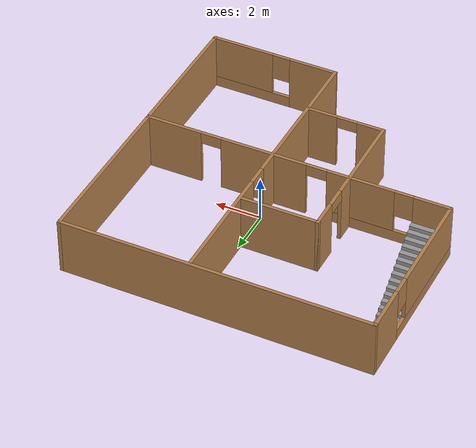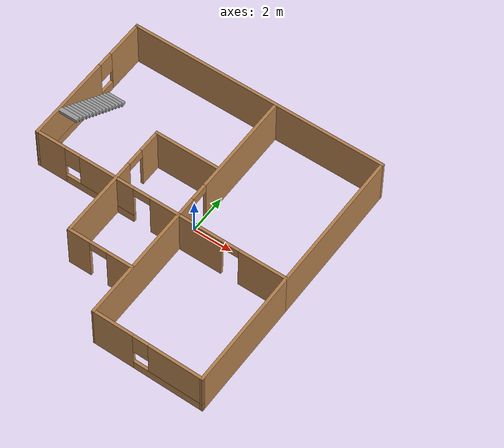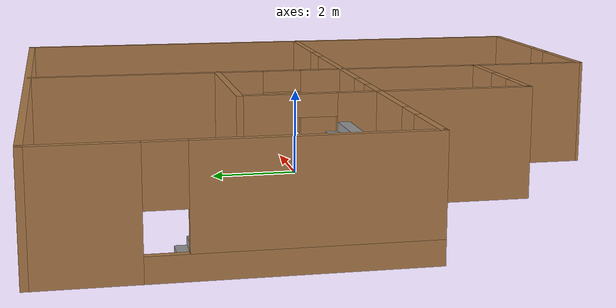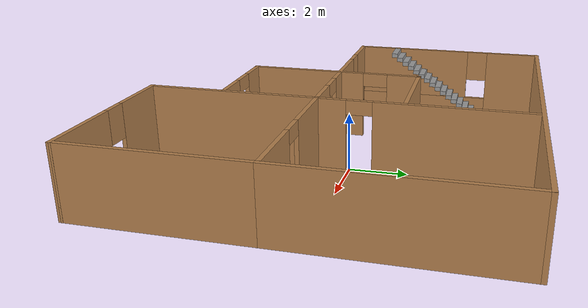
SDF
<?xml version='1.0'?>
<sdf version='1.6'>
  <model name='model'>
    <pose frame=''>-1.02283 -0.516405 0 0 -0 0</pose>
    <link name='Stairs_0'>
      <visual name='Stairs_0_Visual_0'>
        <pose frame=''>-6.12089 4.20244 0.083333 0 -0 0</pose>
        <geometry>
          <box>
            <size>1 0.233333 0.166667</size>
          </box>
        </geometry>
        <material>
          <script>
            <uri>file://media/materials/scripts/gazebo.material</uri>
            <name>Gazebo/Grey</name>
          </script>
          <ambient>1 1 1 1</ambient>
        </material>
        <meta>
          <layer>0</layer>
        </meta>
      </visual>
      <collision name='Stairs_0_Collision_0'>
        <geometry>
          <box>
            <size>1 0.233333 0.166667</size>
          </box>
        </geometry>
        <pose frame=''>-6.12089 4.20244 0.083333 0 -0 0</pose>
      </collision>
      <visual name='Stairs_0_Visual_1'>
        <pose frame=''>-6.12089 3.9691 0.25 0 -0 0</pose>
        <geometry>
          <box>
            <size>1 0.233333 0.166667</size>
          </box>
        </geometry>
        <material>
          <script>
            <uri>file://media/materials/scripts/gazebo.material</uri>
            <name>Gazebo/Grey</name>
          </script>
          <ambient>1 1 1 1</ambient>
        </material>
        <meta>
          <layer>0</layer>
        </meta>
      </visual>
      <collision name='Stairs_0_Collision_1'>
        <geometry>
          <box>
            <size>1 0.233333 0.166667</size>
          </box>
        </geometry>
        <pose frame=''>-6.12089 3.9691 0.25 0 -0 0</pose>
      </collision>
      <visual name='Stairs_0_Visual_2'>
        <pose frame=''>-6.12089 3.73577 0.416667 0 -0 0</pose>
        <geometry>
          <box>
            <size>1 0.233333 0.166667</size>
          </box>
        </geometry>
        <material>
          <script>
            <uri>file://media/materials/scripts/gazebo.material</uri>
            <name>Gazebo/Grey</name>
          </script>
          <ambient>1 1 1 1</ambient>
        </material>
        <meta>
          <layer>0</layer>
        </meta>
      </visual>
      <collision name='Stairs_0_Collision_2'>
        <geometry>
          <box>
            <size>1 0.233333 0.166667</size>
          </box>
        </geometry>
        <pose frame=''>-6.12089 3.73577 0.416667 0 -0 0</pose>
      </collision>
      <visual name='Stairs_0_Visual_3'>
        <pose frame=''>-6.12089 3.50244 0.583333 0 -0 0</pose>
        <geometry>
          <box>
            <size>1 0.233333 0.166667</size>
          </box>
        </geometry>
        <material>
          <script>
            <uri>file://media/materials/scripts/gazebo.material</uri>
            <name>Gazebo/Grey</name>
          </script>
          <ambient>1 1 1 1</ambient>
        </material>
        <meta>
          <layer>0</layer>
        </meta>
      </visual>
      <collision name='Stairs_0_Collision_3'>
        <geometry>
          <box>
            <size>1 0.233333 0.166667</size>
          </box>
        </geometry>
        <pose frame=''>-6.12089 3.50244 0.583333 0 -0 0</pose>
      </collision>
      <visual name='Stairs_0_Visual_4'>
        <pose frame=''>-6.12089 3.26911 0.75 0 -0 0</pose>
        <geometry>
          <box>
            <size>1 0.233333 0.166667</size>
          </box>
        </geometry>
        <material>
          <script>
            <uri>file://media/materials/scripts/gazebo.material</uri>
            <name>Gazebo/Grey</name>
          </script>
          <ambient>1 1 1 1</ambient>
        </material>
        <meta>
          <layer>0</layer>
        </meta>
      </visual>
      <collision name='Stairs_0_Collision_4'>
        <geometry>
          <box>
            <size>1 0.233333 0.166667</size>
          </box>
        </geometry>
        <pose frame=''>-6.12089 3.26911 0.75 0 -0 0</pose>
      </collision>
      <visual name='Stairs_0_Visual_5'>
        <pose frame=''>-6.12089 3.03577 0.916667 0 -0 0</pose>
        <geometry>
          <box>
            <size>1 0.233333 0.166667</size>
          </box>
        </geometry>
        <material>
          <script>
            <uri>file://media/materials/scripts/gazebo.material</uri>
            <name>Gazebo/Grey</name>
          </script>
          <ambient>1 1 1 1</ambient>
        </material>
        <meta>
          <layer>0</layer>
        </meta>
      </visual>
      <collision name='Stairs_0_Collision_5'>
        <geometry>
          <box>
            <size>1 0.233333 0.166667</size>
          </box>
        </geometry>
        <pose frame=''>-6.12089 3.03577 0.916667 0 -0 0</pose>
      </collision>
      <visual name='Stairs_0_Visual_6'>
        <pose frame=''>-6.12089 2.80244 1.08333 0 -0 0</pose>
        <geometry>
          <box>
            <size>1 0.233333 0.166667</size>
          </box>
        </geometry>
        <material>
          <script>
            <uri>file://media/materials/scripts/gazebo.material</uri>
            <name>Gazebo/Grey</name>
          </script>
          <ambient>1 1 1 1</ambient>
        </material>
        <meta>
          <layer>0</layer>
        </meta>
      </visual>
      <collision name='Stairs_0_Collision_6'>
        <geometry>
          <box>
            <size>1 0.233333 0.166667</size>
          </box>
        </geometry>
        <pose frame=''>-6.12089 2.80244 1.08333 0 -0 0</pose>
      </collision>
      <visual name='Stairs_0_Visual_7'>
        <pose frame=''>-6.12089 2.5691 1.25 0 -0 0</pose>
        <geometry>
          <box>
            <size>1 0.233333 0.166667</size>
          </box>
        </geometry>
        <material>
          <script>
            <uri>file://media/materials/scripts/gazebo.material</uri>
            <name>Gazebo/Grey</name>
          </script>
          <ambient>1 1 1 1</ambient>
        </material>
        <meta>
          <layer>0</layer>
        </meta>
      </visual>
      <collision name='Stairs_0_Collision_7'>
        <geometry>
          <box>
            <size>1 0.233333 0.166667</size>
          </box>
        </geometry>
        <pose frame=''>-6.12089 2.5691 1.25 0 -0 0</pose>
      </collision>
      <visual name='Stairs_0_Visual_8'>
        <pose frame=''>-6.12089 2.33577 1.41667 0 -0 0</pose>
        <geometry>
          <box>
            <size>1 0.233333 0.166667</size>
          </box>
        </geometry>
        <material>
          <script>
            <uri>file://media/materials/scripts/gazebo.material</uri>
            <name>Gazebo/Grey</name>
          </script>
          <ambient>1 1 1 1</ambient>
        </material>
        <meta>
          <layer>0</layer>
        </meta>
      </visual>
      <collision name='Stairs_0_Collision_8'>
        <geometry>
          <box>
            <size>1 0.233333 0.166667</size>
          </box>
        </geometry>
        <pose frame=''>-6.12089 2.33577 1.41667 0 -0 0</pose>
      </collision>
      <visual name='Stairs_0_Visual_9'>
        <pose frame=''>-6.12089 2.10244 1.58333 0 -0 0</pose>
        <geometry>
          <box>
            <size>1 0.233333 0.166667</size>
          </box>
        </geometry>
        <material>
          <script>
            <uri>file://media/materials/scripts/gazebo.material</uri>
            <name>Gazebo/Grey</name>
          </script>
          <ambient>1 1 1 1</ambient>
        </material>
        <meta>
          <layer>0</layer>
        </meta>
      </visual>
      <collision name='Stairs_0_Collision_9'>
        <geometry>
          <box>
            <size>1 0.233333 0.166667</size>
          </box>
        </geometry>
        <pose frame=''>-6.12089 2.10244 1.58333 0 -0 0</pose>
      </collision>
      <visual name='Stairs_0_Visual_10'>
        <pose frame=''>-6.12089 1.86911 1.75 0 -0 0</pose>
        <geometry>
          <box>
            <size>1 0.233333 0.166667</size>
          </box>
        </geometry>
        <material>
          <script>
            <uri>file://media/materials/scripts/gazebo.material</uri>
            <name>Gazebo/Grey</name>
          </script>
          <ambient>1 1 1 1</ambient>
        </material>
        <meta>
          <layer>0</layer>
        </meta>
      </visual>
      <collision name='Stairs_0_Collision_10'>
        <geometry>
          <box>
            <size>1 0.233333 0.166667</size>
          </box>
        </geometry>
        <pose frame=''>-6.12089 1.86911 1.75 0 -0 0</pose>
      </collision>
      <visual name='Stairs_0_Visual_11'>
        <pose frame=''>-6.12089 1.63577 1.91667 0 -0 0</pose>
        <geometry>
          <box>
            <size>1 0.233333 0.166667</size>
          </box>
        </geometry>
        <material>
          <script>
            <uri>file://media/materials/scripts/gazebo.material</uri>
            <name>Gazebo/Grey</name>
          </script>
          <ambient>1 1 1 1</ambient>
        </material>
        <meta>
          <layer>0</layer>
        </meta>
      </visual>
      <collision name='Stairs_0_Collision_11'>
        <geometry>
          <box>
            <size>1 0.233333 0.166667</size>
          </box>
        </geometry>
        <pose frame=''>-6.12089 1.63577 1.91667 0 -0 0</pose>
      </collision>
      <visual name='Stairs_0_Visual_12'>
        <pose frame=''>-6.12089 1.40244 2.08333 0 -0 0</pose>
        <geometry>
          <box>
            <size>1 0.233333 0.166667</size>
          </box>
        </geometry>
        <material>
          <script>
            <uri>file://media/materials/scripts/gazebo.material</uri>
            <name>Gazebo/Grey</name>
          </script>
          <ambient>1 1 1 1</ambient>
        </material>
        <meta>
          <layer>0</layer>
        </meta>
      </visual>
      <collision name='Stairs_0_Collision_12'>
        <geometry>
          <box>
            <size>1 0.233333 0.166667</size>
          </box>
        </geometry>
        <pose frame=''>-6.12089 1.40244 2.08333 0 -0 0</pose>
      </collision>
      <visual name='Stairs_0_Visual_13'>
        <pose frame=''>-6.12089 1.16911 2.25 0 -0 0</pose>
        <geometry>
          <box>
            <size>1 0.233333 0.166667</size>
          </box>
        </geometry>
        <material>
          <script>
            <uri>file://media/materials/scripts/gazebo.material</uri>
            <name>Gazebo/Grey</name>
          </script>
          <ambient>1 1 1 1</ambient>
        </material>
        <meta>
          <layer>0</layer>
        </meta>
      </visual>
      <collision name='Stairs_0_Collision_13'>
        <geometry>
          <box>
            <size>1 0.233333 0.166667</size>
          </box>
        </geometry>
        <pose frame=''>-6.12089 1.16911 2.25 0 -0 0</pose>
      </collision>
      <visual name='Stairs_0_Visual_14'>
        <pose frame=''>-6.12089 0.935772 2.41667 0 -0 0</pose>
        <geometry>
          <box>
            <size>1 0.233333 0.166667</size>
          </box>
        </geometry>
        <material>
          <script>
            <uri>file://media/materials/scripts/gazebo.material</uri>
            <name>Gazebo/Grey</name>
          </script>
          <ambient>1 1 1 1</ambient>
        </material>
        <meta>
          <layer>0</layer>
        </meta>
      </visual>
      <collision name='Stairs_0_Collision_14'>
        <geometry>
          <box>
            <size>1 0.233333 0.166667</size>
          </box>
        </geometry>
        <pose frame=''>-6.12089 0.935772 2.41667 0 -0 0</pose>
      </collision>
    </link>
    <link name='Wall_10'>
      <collision name='Wall_10_Collision'>
        <geometry>
          <box>
            <size>6.25 0.15 2.5</size>
          </box>
        </geometry>
        <pose frame=''>0 0 1.25 0 -0 0</pose>
      </collision>
      <visual name='Wall_10_Visual'>
        <pose frame=''>0 0 1.25 0 -0 0</pose>
        <geometry>
          <box>
            <size>6.25 0.15 2.5</size>
          </box>
        </geometry>
        <material>
          <script>
            <uri>file://media/materials/scripts/gazebo.material</uri>
            <name>Gazebo/Wood</name>
          </script>
          <ambient>1 1 1 1</ambient>
        </material>
        <meta>
          <layer>0</layer>
        </meta>
      </visual>
      <pose frame=''>6.67469 -3.67469 0 0 -0 1.5708</pose>
    </link>
    <link name='Wall_12'>
      <collision name='Wall_12_Collision'>
        <geometry>
          <box>
            <size>3.5 0.15 2.5</size>
          </box>
        </geometry>
        <pose frame=''>0 0 1.25 0 -0 0</pose>
      </collision>
      <visual name='Wall_12_Visual'>
        <pose frame=''>0 0 1.25 0 -0 0</pose>
        <geometry>
          <box>
            <size>3.5 0.15 2.5</size>
          </box>
        </geometry>
        <material>
          <script>
            <uri>file://media/materials/scripts/gazebo.material</uri>
            <name>Gazebo/Wood</name>
          </script>
          <ambient>1 1 1 1</ambient>
        </material>
        <meta>
          <layer>0</layer>
        </meta>
      </visual>
      <pose frame=''>-0.67352 2.3745 0 0 -0 3.14159</pose>
    </link>
    <link name='Wall_13'>
      <pose frame=''>-2.34852 -0.800497 0 0 0 -1.5708</pose>
      <visual name='Wall_13_Visual_0'>
        <pose frame=''>-2.62079 0 1.25 0 -0 0</pose>
        <geometry>
          <box>
            <size>1.25842 0.15 2.5</size>
          </box>
        </geometry>
        <material>
          <script>
            <uri>file://media/materials/scripts/gazebo.material</uri>
            <name>Gazebo/Wood</name>
          </script>
          <ambient>1 1 1 1</ambient>
        </material>
        <meta>
          <layer>0</layer>
        </meta>
      </visual>
      <collision name='Wall_13_Collision_0'>
        <geometry>
          <box>
            <size>1.25842 0.15 2.5</size>
          </box>
        </geometry>
        <pose frame=''>-2.62079 0 1.25 0 -0 0</pose>
      </collision>
      <visual name='Wall_13_Visual_1'>
        <pose frame=''>1.07921 0 1.25 0 -0 0</pose>
        <geometry>
          <box>
            <size>4.34157 0.15 2.5</size>
          </box>
        </geometry>
        <material>
          <script>
            <uri>file://media/materials/scripts/gazebo.material</uri>
            <name>Gazebo/Wood</name>
          </script>
          <ambient>1 1 1 1</ambient>
        </material>
        <meta>
          <layer>0</layer>
        </meta>
      </visual>
      <collision name='Wall_13_Collision_1'>
        <geometry>
          <box>
            <size>4.34157 0.15 2.5</size>
          </box>
        </geometry>
        <pose frame=''>1.07921 0 1.25 0 -0 0</pose>
      </collision>
      <visual name='Wall_13_Visual_2'>
        <pose frame=''>-1.54157 0 2.25 0 -0 0</pose>
        <geometry>
          <box>
            <size>0.9 0.15 0.5</size>
          </box>
        </geometry>
        <material>
          <script>
            <uri>file://media/materials/scripts/gazebo.material</uri>
            <name>Gazebo/Wood</name>
          </script>
          <ambient>1 1 1 1</ambient>
        </material>
        <meta>
          <layer>0</layer>
        </meta>
      </visual>
      <collision name='Wall_13_Collision_2'>
        <geometry>
          <box>
            <size>0.9 0.15 0.5</size>
          </box>
        </geometry>
        <pose frame=''>-1.54157 0 2.25 0 -0 0</pose>
      </collision>
    </link>
    <link name='Wall_14'>
      <pose frame=''>-0.67352 -3.9755 0 0 -0 0</pose>
      <visual name='Wall_14_Visual_0'>
        <pose frame=''>-1.14388 0 1.25 0 -0 0</pose>
        <geometry>
          <box>
            <size>1.21223 0.15 2.5</size>
          </box>
        </geometry>
        <material>
          <script>
            <uri>file://media/materials/scripts/gazebo.material</uri>
            <name>Gazebo/Wood</name>
          </script>
          <ambient>1 1 1 1</ambient>
        </material>
        <meta>
          <layer>0</layer>
        </meta>
      </visual>
      <collision name='Wall_14_Collision_0'>
        <geometry>
          <box>
            <size>1.21223 0.15 2.5</size>
          </box>
        </geometry>
        <pose frame=''>-1.14388 0 1.25 0 -0 0</pose>
      </collision>
      <visual name='Wall_14_Visual_1'>
        <pose frame=''>1.05612 0 1.25 0 -0 0</pose>
        <geometry>
          <box>
            <size>1.38777 0.15 2.5</size>
          </box>
        </geometry>
        <material>
          <script>
            <uri>file://media/materials/scripts/gazebo.material</uri>
            <name>Gazebo/Wood</name>
          </script>
          <ambient>1 1 1 1</ambient>
        </material>
        <meta>
          <layer>0</layer>
        </meta>
      </visual>
      <collision name='Wall_14_Collision_1'>
        <geometry>
          <box>
            <size>1.38777 0.15 2.5</size>
          </box>
        </geometry>
        <pose frame=''>1.05612 0 1.25 0 -0 0</pose>
      </collision>
      <visual name='Wall_14_Visual_2'>
        <pose frame=''>-0.087766 0 2.25 0 -0 0</pose>
        <geometry>
          <box>
            <size>0.9 0.15 0.5</size>
          </box>
        </geometry>
        <material>
          <script>
            <uri>file://media/materials/scripts/gazebo.material</uri>
            <name>Gazebo/Wood</name>
          </script>
          <ambient>1 1 1 1</ambient>
        </material>
        <meta>
          <layer>0</layer>
        </meta>
      </visual>
      <collision name='Wall_14_Collision_2'>
        <geometry>
          <box>
            <size>0.9 0.15 0.5</size>
          </box>
        </geometry>
        <pose frame=''>-0.087766 0 2.25 0 -0 0</pose>
      </collision>
    </link>
    <link name='Wall_3'>
      <pose frame=''>-6.67531 3.05031 0 0 0 -1.5708</pose>
      <visual name='Wall_3_Visual_0'>
        <pose frame=''>-2.7056 0 1.25 0 -0 0</pose>
        <geometry>
          <box>
            <size>2.0888 0.15 2.5</size>
          </box>
        </geometry>
        <material>
          <script>
            <uri>file://media/materials/scripts/gazebo.material</uri>
            <name>Gazebo/Wood</name>
          </script>
          <ambient>1 1 1 1</ambient>
        </material>
        <meta>
          <layer>0</layer>
        </meta>
      </visual>
      <collision name='Wall_3_Collision_0'>
        <geometry>
          <box>
            <size>2.0888 0.15 2.5</size>
          </box>
        </geometry>
        <pose frame=''>-2.7056 0 1.25 0 -0 0</pose>
      </collision>
      <visual name='Wall_3_Visual_1'>
        <pose frame=''>1.0444 0 0.25 0 -0 0</pose>
        <geometry>
          <box>
            <size>5.4112 0.15 0.5</size>
          </box>
        </geometry>
        <material>
          <script>
            <uri>file://media/materials/scripts/gazebo.material</uri>
            <name>Gazebo/Wood</name>
          </script>
          <ambient>1 1 1 1</ambient>
        </material>
        <meta>
          <layer>0</layer>
        </meta>
      </visual>
      <collision name='Wall_3_Collision_1'>
        <geometry>
          <box>
            <size>5.4112 0.15 0.5</size>
          </box>
        </geometry>
        <pose frame=''>1.0444 0 0.25 0 -0 0</pose>
      </collision>
      <visual name='Wall_3_Visual_2'>
        <pose frame=''>1.4444 0 1.5 0 -0 0</pose>
        <geometry>
          <box>
            <size>4.6112 0.15 2</size>
          </box>
        </geometry>
        <material>
          <script>
            <uri>file://media/materials/scripts/gazebo.material</uri>
            <name>Gazebo/Wood</name>
          </script>
          <ambient>1 1 1 1</ambient>
        </material>
        <meta>
          <layer>0</layer>
        </meta>
      </visual>
      <collision name='Wall_3_Collision_2'>
        <geometry>
          <box>
            <size>4.6112 0.15 2</size>
          </box>
        </geometry>
        <pose frame=''>1.4444 0 1.5 0 -0 0</pose>
      </collision>
      <visual name='Wall_3_Visual_3'>
        <pose frame=''>-1.2612 0 1.9 0 -0 0</pose>
        <geometry>
          <box>
            <size>0.8 0.15 1.2</size>
          </box>
        </geometry>
        <material>
          <script>
            <uri>file://media/materials/scripts/gazebo.material</uri>
            <name>Gazebo/Wood</name>
          </script>
          <ambient>1 1 1 1</ambient>
        </material>
        <meta>
          <layer>0</layer>
        </meta>
      </visual>
      <collision name='Wall_3_Collision_3'>
        <geometry>
          <box>
            <size>0.8 0.15 1.2</size>
          </box>
        </geometry>
        <pose frame=''>-1.2612 0 1.9 0 -0 0</pose>
      </collision>
    </link>
    <link name='Wall_4'>
      <pose frame=''>-0.000311 -0.624689 0 0 -0 0</pose>
      <visual name='Wall_4_Visual_0'>
        <pose frame=''>-5.93232 0 1.25 0 -0 0</pose>
        <geometry>
          <box>
            <size>1.63535 0.15 2.5</size>
          </box>
        </geometry>
        <material>
          <script>
            <uri>file://media/materials/scripts/gazebo.material</uri>
            <name>Gazebo/Wood</name>
          </script>
          <ambient>1 1 1 1</ambient>
        </material>
        <meta>
          <layer>0</layer>
        </meta>
      </visual>
      <collision name='Wall_4_Collision_0'>
        <geometry>
          <box>
            <size>1.63535 0.15 2.5</size>
          </box>
        </geometry>
        <pose frame=''>-5.93232 0 1.25 0 -0 0</pose>
      </collision>
      <visual name='Wall_4_Visual_1'>
        <pose frame=''>1.42467 0 1.25 0 -0 0</pose>
        <geometry>
          <box>
            <size>3.80773 0.15 2.5</size>
          </box>
        </geometry>
        <material>
          <script>
            <uri>file://media/materials/scripts/gazebo.material</uri>
            <name>Gazebo/Wood</name>
          </script>
          <ambient>1 1 1 1</ambient>
        </material>
        <meta>
          <layer>0</layer>
        </meta>
      </visual>
      <collision name='Wall_4_Collision_1'>
        <geometry>
          <box>
            <size>3.80773 0.15 2.5</size>
          </box>
        </geometry>
        <pose frame=''>1.42467 0 1.25 0 -0 0</pose>
      </collision>
      <visual name='Wall_4_Visual_2'>
        <pose frame=''>5.48927 0 1.25 0 -0 0</pose>
        <geometry>
          <box>
            <size>2.52147 0.15 2.5</size>
          </box>
        </geometry>
        <material>
          <script>
            <uri>file://media/materials/scripts/gazebo.material</uri>
            <name>Gazebo/Wood</name>
          </script>
          <ambient>1 1 1 1</ambient>
        </material>
        <meta>
          <layer>0</layer>
        </meta>
      </visual>
      <collision name='Wall_4_Collision_2'>
        <geometry>
          <box>
            <size>2.52147 0.15 2.5</size>
          </box>
        </geometry>
        <pose frame=''>5.48927 0 1.25 0 -0 0</pose>
      </collision>
      <visual name='Wall_4_Visual_3'>
        <pose frame=''>-3.24693 0 0.25 0 -0 0</pose>
        <geometry>
          <box>
            <size>3.73545 0.15 0.5</size>
          </box>
        </geometry>
        <material>
          <script>
            <uri>file://media/materials/scripts/gazebo.material</uri>
            <name>Gazebo/Wood</name>
          </script>
          <ambient>1 1 1 1</ambient>
        </material>
        <meta>
          <layer>0</layer>
        </meta>
      </visual>
      <collision name='Wall_4_Collision_3'>
        <geometry>
          <box>
            <size>3.73545 0.15 0.5</size>
          </box>
        </geometry>
        <pose frame=''>-3.24693 0 0.25 0 -0 0</pose>
      </collision>
      <visual name='Wall_4_Visual_4'>
        <pose frame=''>-2.84693 0 1.5 0 -0 0</pose>
        <geometry>
          <box>
            <size>2.93545 0.15 2</size>
          </box>
        </geometry>
        <material>
          <script>
            <uri>file://media/materials/scripts/gazebo.material</uri>
            <name>Gazebo/Wood</name>
          </script>
          <ambient>1 1 1 1</ambient>
        </material>
        <meta>
          <layer>0</layer>
        </meta>
      </visual>
      <collision name='Wall_4_Collision_4'>
        <geometry>
          <box>
            <size>2.93545 0.15 2</size>
          </box>
        </geometry>
        <pose frame=''>-2.84693 0 1.5 0 -0 0</pose>
      </collision>
      <visual name='Wall_4_Visual_5'>
        <pose frame=''>-4.71465 0 1.9 0 -0 0</pose>
        <geometry>
          <box>
            <size>0.8 0.15 1.2</size>
          </box>
        </geometry>
        <material>
          <script>
            <uri>file://media/materials/scripts/gazebo.material</uri>
            <name>Gazebo/Wood</name>
          </script>
          <ambient>1 1 1 1</ambient>
        </material>
        <meta>
          <layer>0</layer>
        </meta>
      </visual>
      <collision name='Wall_4_Collision_5'>
        <geometry>
          <box>
            <size>0.8 0.15 1.2</size>
          </box>
        </geometry>
        <pose frame=''>-4.71465 0 1.9 0 -0 0</pose>
      </collision>
      <visual name='Wall_4_Visual_6'>
        <pose frame=''>3.77853 0 2.25 0 -0 0</pose>
        <geometry>
          <box>
            <size>0.9 0.15 0.5</size>
          </box>
        </geometry>
        <material>
          <script>
            <uri>file://media/materials/scripts/gazebo.material</uri>
            <name>Gazebo/Wood</name>
          </script>
          <ambient>1 1 1 1</ambient>
        </material>
        <meta>
          <layer>0</layer>
        </meta>
      </visual>
      <collision name='Wall_4_Collision_6'>
        <geometry>
          <box>
            <size>0.9 0.15 0.5</size>
          </box>
        </geometry>
        <pose frame=''>3.77853 0 2.25 0 -0 0</pose>
      </collision>
      <visual name='Wall_4_Visual_7'>
        <pose frame=''>-0.9292 0 2.25 0 -0 0</pose>
        <geometry>
          <box>
            <size>0.9 0.15 0.5</size>
          </box>
        </geometry>
        <material>
          <script>
            <uri>file://media/materials/scripts/gazebo.material</uri>
            <name>Gazebo/Wood</name>
          </script>
          <ambient>1 1 1 1</ambient>
        </material>
        <meta>
          <layer>0</layer>
        </meta>
      </visual>
      <collision name='Wall_4_Collision_7'>
        <geometry>
          <box>
            <size>0.9 0.15 0.5</size>
          </box>
        </geometry>
        <pose frame=''>-0.9292 0 2.25 0 -0 0</pose>
      </collision>
    </link>
    <link name='Wall_5'>
      <collision name='Wall_5_Collision'>
        <geometry>
          <box>
            <size>7.5 0.15 2.5</size>
          </box>
        </geometry>
        <pose frame=''>0 0 1.25 0 -0 0</pose>
      </collision>
      <visual name='Wall_5_Visual'>
        <pose frame=''>0 0 1.25 0 -0 0</pose>
        <geometry>
          <box>
            <size>7.5 0.15 2.5</size>
          </box>
        </geometry>
        <material>
          <script>
            <uri>file://media/materials/scripts/gazebo.material</uri>
            <name>Gazebo/Wood</name>
          </script>
          <ambient>1 1 1 1</ambient>
        </material>
        <meta>
          <layer>0</layer>
        </meta>
      </visual>
      <pose frame=''>6.67469 3.05031 0 0 -0 1.5708</pose>
    </link>
    <link name='Wall_6'>
      <collision name='Wall_6_Collision'>
        <geometry>
          <box>
            <size>13.5 0.15 2.5</size>
          </box>
        </geometry>
        <pose frame=''>0 0 1.25 0 -0 0</pose>
      </collision>
      <visual name='Wall_6_Visual'>
        <pose frame=''>0 0 1.25 0 -0 0</pose>
        <geometry>
          <box>
            <size>13.5 0.15 2.5</size>
          </box>
        </geometry>
        <material>
          <script>
            <uri>file://media/materials/scripts/gazebo.material</uri>
            <name>Gazebo/Wood</name>
          </script>
          <ambient>1 1 1 1</ambient>
        </material>
        <meta>
          <layer>0</layer>
        </meta>
      </visual>
      <pose frame=''>-0.000311 6.72531 0 0 -0 3.14159</pose>
    </link>
    <link name='Wall_8'>
      <pose frame=''>1.02164 -0.002589 0 0 0 -1.5708</pose>
      <visual name='Wall_8_Visual_0'>
        <pose frame=''>-4.02595 0 1.25 0 -0 0</pose>
        <geometry>
          <box>
            <size>5.44811 0.15 2.5</size>
          </box>
        </geometry>
        <material>
          <script>
            <uri>file://media/materials/scripts/gazebo.material</uri>
            <name>Gazebo/Wood</name>
          </script>
          <ambient>1 1 1 1</ambient>
        </material>
        <meta>
          <layer>0</layer>
        </meta>
      </visual>
      <collision name='Wall_8_Collision_0'>
        <geometry>
          <box>
            <size>5.44811 0.15 2.5</size>
          </box>
        </geometry>
        <pose frame=''>-4.02595 0 1.25 0 -0 0</pose>
      </collision>
      <visual name='Wall_8_Visual_1'>
        <pose frame=''>3.17406 0 1.25 0 -0 0</pose>
        <geometry>
          <box>
            <size>7.15189 0.15 2.5</size>
          </box>
        </geometry>
        <material>
          <script>
            <uri>file://media/materials/scripts/gazebo.material</uri>
            <name>Gazebo/Wood</name>
          </script>
          <ambient>1 1 1 1</ambient>
        </material>
        <meta>
          <layer>0</layer>
        </meta>
      </visual>
      <collision name='Wall_8_Collision_1'>
        <geometry>
          <box>
            <size>7.15189 0.15 2.5</size>
          </box>
        </geometry>
        <pose frame=''>3.17406 0 1.25 0 -0 0</pose>
      </collision>
      <visual name='Wall_8_Visual_2'>
        <pose frame=''>-0.85189 0 2.25 0 -0 0</pose>
        <geometry>
          <box>
            <size>0.9 0.15 0.5</size>
          </box>
        </geometry>
        <material>
          <script>
            <uri>file://media/materials/scripts/gazebo.material</uri>
            <name>Gazebo/Wood</name>
          </script>
          <ambient>1 1 1 1</ambient>
        </material>
        <meta>
          <layer>0</layer>
        </meta>
      </visual>
      <collision name='Wall_8_Collision_2'>
        <geometry>
          <box>
            <size>0.9 0.15 0.5</size>
          </box>
        </geometry>
        <pose frame=''>-0.85189 0 2.25 0 -0 0</pose>
      </collision>
    </link>
    <link name='Wall_9'>
      <pose frame=''>3.84816 -6.70114 0 0 0 -0.008332</pose>
      <visual name='Wall_9_Visual_0'>
        <pose frame=''>-1.81964 0 1.25 0 -0 0</pose>
        <geometry>
          <box>
            <size>2.16396 0.15 2.5</size>
          </box>
        </geometry>
        <material>
          <script>
            <uri>file://media/materials/scripts/gazebo.material</uri>
            <name>Gazebo/Wood</name>
          </script>
          <ambient>1 1 1 1</ambient>
        </material>
        <meta>
          <layer>0</layer>
        </meta>
      </visual>
      <collision name='Wall_9_Collision_0'>
        <geometry>
          <box>
            <size>2.16396 0.15 2.5</size>
          </box>
        </geometry>
        <pose frame=''>-1.81964 0 1.25 0 -0 0</pose>
      </collision>
      <visual name='Wall_9_Visual_1'>
        <pose frame=''>1.08198 0 0.25 0 -0 0</pose>
        <geometry>
          <box>
            <size>3.63928 0.15 0.5</size>
          </box>
        </geometry>
        <material>
          <script>
            <uri>file://media/materials/scripts/gazebo.material</uri>
            <name>Gazebo/Wood</name>
          </script>
          <ambient>1 1 1 1</ambient>
        </material>
        <meta>
          <layer>0</layer>
        </meta>
      </visual>
      <collision name='Wall_9_Collision_1'>
        <geometry>
          <box>
            <size>3.63928 0.15 0.5</size>
          </box>
        </geometry>
        <pose frame=''>1.08198 0 0.25 0 -0 0</pose>
      </collision>
      <visual name='Wall_9_Visual_2'>
        <pose frame=''>1.48198 0 1.5 0 -0 0</pose>
        <geometry>
          <box>
            <size>2.83928 0.15 2</size>
          </box>
        </geometry>
        <material>
          <script>
            <uri>file://media/materials/scripts/gazebo.material</uri>
            <name>Gazebo/Wood</name>
          </script>
          <ambient>1 1 1 1</ambient>
        </material>
        <meta>
          <layer>0</layer>
        </meta>
      </visual>
      <collision name='Wall_9_Collision_2'>
        <geometry>
          <box>
            <size>2.83928 0.15 2</size>
          </box>
        </geometry>
        <pose frame=''>1.48198 0 1.5 0 -0 0</pose>
      </collision>
      <visual name='Wall_9_Visual_3'>
        <pose frame=''>-0.33766 0 1.9 0 -0 0</pose>
        <geometry>
          <box>
            <size>0.8 0.15 1.2</size>
          </box>
        </geometry>
        <material>
          <script>
            <uri>file://media/materials/scripts/gazebo.material</uri>
            <name>Gazebo/Wood</name>
          </script>
          <ambient>1 1 1 1</ambient>
        </material>
        <meta>
          <layer>0</layer>
        </meta>
      </visual>
      <collision name='Wall_9_Collision_3'>
        <geometry>
          <box>
            <size>0.8 0.15 1.2</size>
          </box>
        </geometry>
        <pose frame=''>-0.33766 0 1.9 0 -0 0</pose>
      </collision>
    </link>
    <static>1</static>
  </model>
</sdf>
